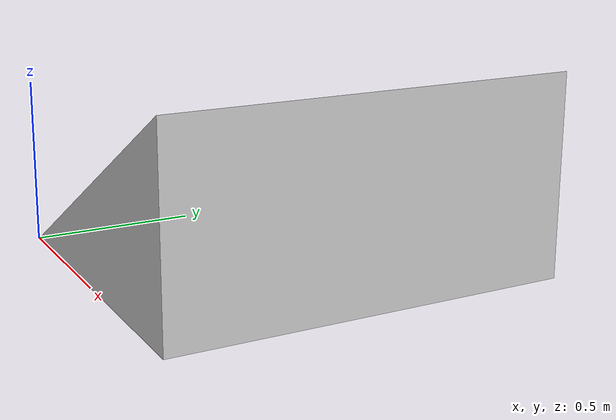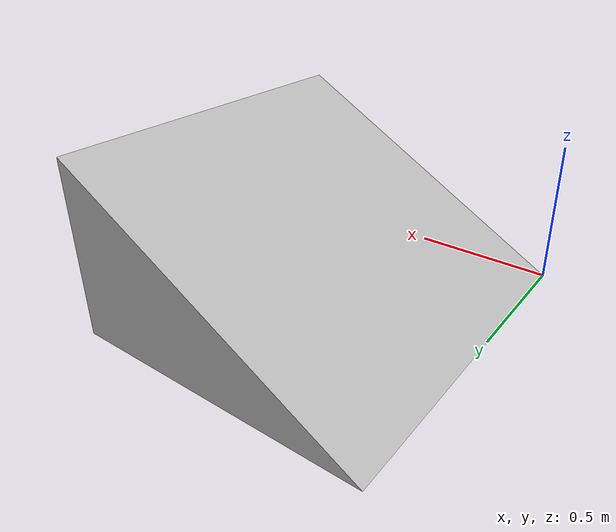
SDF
<?xml version="1.0" ?>
<sdf version="1.5">
  <model name="Ramp30Deg">
        <static>true</static>
    <link name="link">
    <gravity>0</gravity>
      <collision name="collision">
        <geometry>
          <mesh>
            <scale>1 1 1</scale>
            <uri>model://ramp_30/meshes/nist30.dae</uri>
          </mesh>
        </geometry>
      </collision>
      <visual name="visual">
        <geometry>
          <mesh>
            <scale>1 1 1</scale>
            <uri>model://ramp_30/meshes/nist30.dae</uri>
          </mesh>
        </geometry>
      </visual>
    </link>
  </model>
</sdf>
